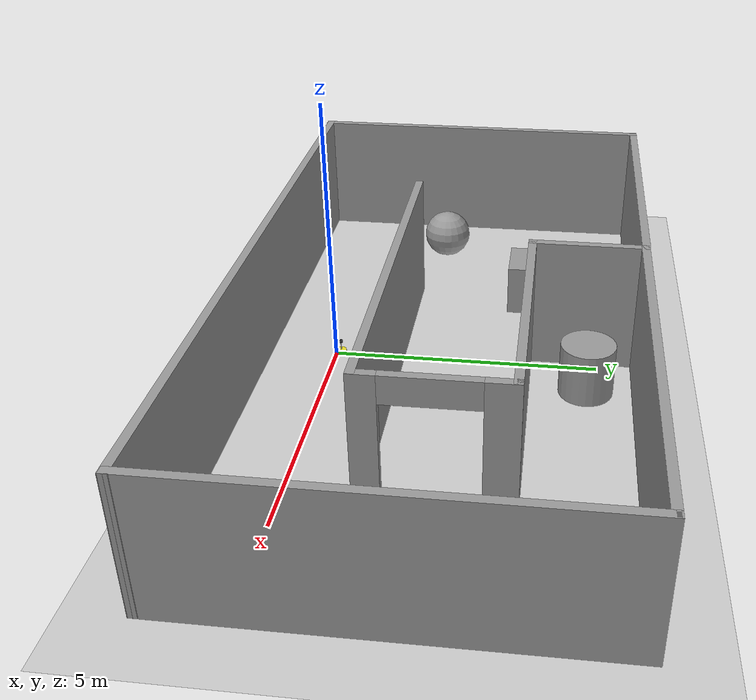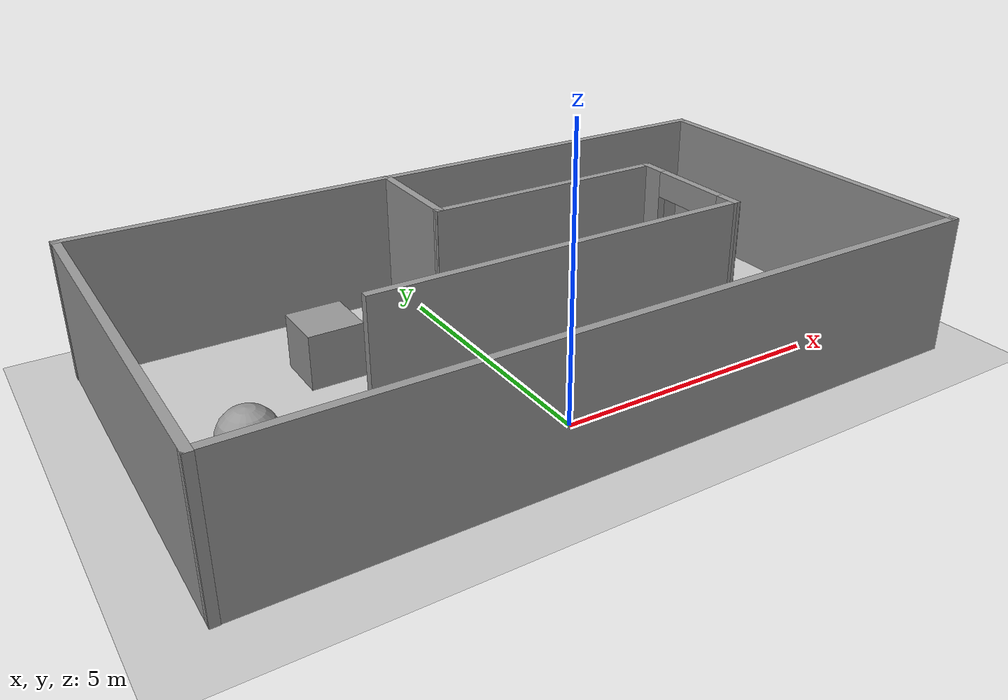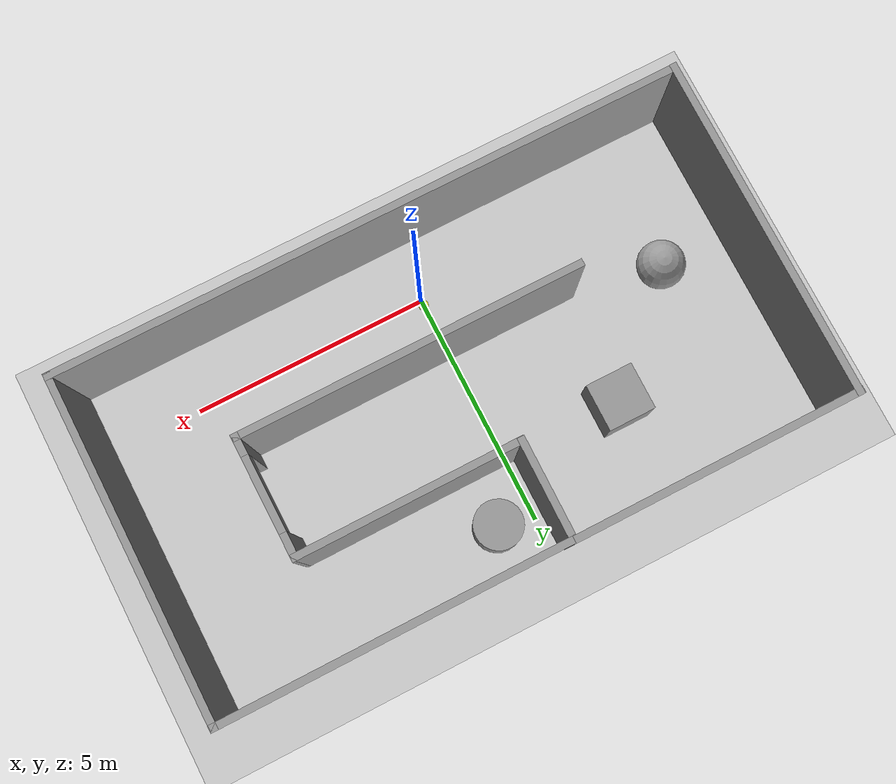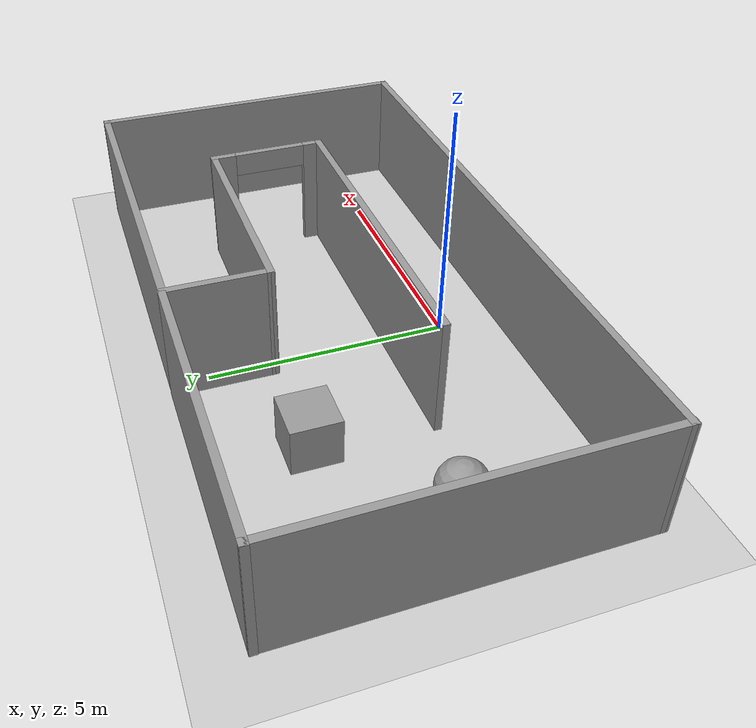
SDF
<sdf version="1.7">
 <world name="default">
  <light name="sun" type="directional">
   <pose>0 0 10 0 -0 0</pose>
   <diffuse>0.8 0.8 0.8 1</diffuse>
   <specular>0.2 0.2 0.2 1</specular>
   <attenuation>
    <range>1000</range>
    <constant>0.9</constant>
    <linear>0.01</linear>
    <quadratic>0.001</quadratic>
   </attenuation>
   <direction>-0.5 0.1 -0.9</direction>
   <spot><inner_angle>0</inner_angle><outer_angle>0</outer_angle><falloff>0</falloff></spot>
  </light>
  <model name="ground_plane">
   <static>1</static>
   <link name="link">
    <collision name="collision">
     <geometry><plane><normal>0 0 1</normal><size>100 100</size></plane></geometry>
     <surface>
      <contact><collide_bitmask>65535</collide_bitmask></contact>
      <friction><ode><mu>100</mu><mu2>50</mu2></ode></friction>
     </surface>
    </collision>
    <visual name="visual">
     <cast_shadows>0</cast_shadows>
     <geometry><plane><normal>0 0 1</normal><size>100 100</size></plane></geometry>
     <material>
      <script><uri>file://media/materials/scripts/gazebo.material</uri><name>Gazebo/Grey</name></script>
     </material>
    </visual>
   </link>
  </model>
  <gravity>0 0 -9.8</gravity>
  <magnetic_field>6e-06 2.3e-05 -4.2e-05</magnetic_field>
  <atmosphere type="adiabatic"/>
  <physics type="ode">
   <max_step_size>0.001</max_step_size>
   <real_time_factor>1</real_time_factor>
   <real_time_update_rate>1000</real_time_update_rate>
  </physics>
  <scene><ambient>0.4 0.4 0.4 1</ambient><background>0.7 0.7 0.7 1</background><shadows>1</shadows></scene>
  <spherical_coordinates>
   <surface_model>EARTH_WGS84</surface_model>
   <latitude_deg>0</latitude_deg>
   <longitude_deg>0</longitude_deg>
   <elevation>0</elevation>
   <heading_deg>0</heading_deg>
  </spherical_coordinates>
  <model name="mycar">
   <link name="base_footprint">
    <inertial>
     <pose>0.00127 0 0.093611 0 -0 0</pose>
     <mass>0.63</mass>
     <inertia>
      <ixx>0.00557395</ixx>
      <ixy>0</ixy>
      <ixz>-1.11111e-05</ixz>
      <iyy>0.00563694</iyy>
      <iyz>0</iyz>
      <izz>0.00261003</izz>
     </inertia>
    </inertial>
    <collision name="base_footprint_fixed_joint_lump__base_link_collision">
     <pose>0 0 0.055 0 -0 0</pose>
     <geometry><cylinder><length>0.08</length><radius>0.1</radius></cylinder></geometry>
    </collision>
    <collision name="base_footprint_fixed_joint_lump__camera_collision_1">
     <pose>0.08 0 0.1075 0 -0 0</pose>
     <geometry><box><size>0.01 0.025 0.025</size></box></geometry>
    </collision>
    <collision name="base_footprint_fixed_joint_lump__support_collision_2">
     <pose>0 0 0.17 0 -0 0</pose>
     <geometry><cylinder><length>0.15</length><radius>0.01</radius></cylinder></geometry>
    </collision>
    <collision name="base_footprint_fixed_joint_lump__laser_collision_3">
     <pose>0 0 0.27 0 -0 0</pose>
     <geometry><cylinder><length>0.05</length><radius>0.03</radius></cylinder></geometry>
    </collision>
    <visual name="base_footprint_visual"><geometry><sphere><radius>0.001</radius></sphere></geometry></visual>
    <visual name="base_footprint_fixed_joint_lump__base_link_visual_1">
     <pose>0 0 0.055 0 -0 0</pose>
     <geometry><cylinder><length>0.08</length><radius>0.1</radius></cylinder></geometry>
     <material>
      <script><name>Gazebo/Yellow</name><uri>file://media/materials/scripts/gazebo.material</uri></script>
     </material>
    </visual>
    <visual name="base_footprint_fixed_joint_lump__camera_visual_2">
     <pose>0.08 0 0.1075 0 -0 0</pose>
     <geometry><box><size>0.01 0.025 0.025</size></box></geometry>
     <material>
      <script><name>Gazebo/Blue</name><uri>file://media/materials/scripts/gazebo.material</uri></script>
     </material>
    </visual>
    <visual name="base_footprint_fixed_joint_lump__support_visual_3">
     <pose>0 0 0.17 0 -0 0</pose>
     <geometry><cylinder><length>0.15</length><radius>0.01</radius></cylinder></geometry>
     <material>
      <script><name>Gazebo/White</name><uri>file://media/materials/scripts/gazebo.material</uri></script>
     </material>
    </visual>
    <visual name="base_footprint_fixed_joint_lump__laser_visual_4">
     <pose>0 0 0.27 0 -0 0</pose>
     <geometry><cylinder><length>0.05</length><radius>0.03</radius></cylinder></geometry>
     <material>
      <script><name>Gazebo/Black</name><uri>file://media/materials/scripts/gazebo.material</uri></script>
     </material>
    </visual>
    <sensor name="rplidar" type="ray">
     <visualize>1</visualize>
     <update_rate>5.5</update_rate>
     <ray>
      <scan>
       <horizontal>
        <samples>360</samples>
        <resolution>1</resolution>
        <min_angle>-3</min_angle>
        <max_angle>3</max_angle>
       </horizontal>
       <vertical><samples>1</samples><min_angle>0</min_angle><max_angle>0</max_angle></vertical>
      </scan>
      <range><min>0.1</min><max>30</max><resolution>0.01</resolution></range>
      <noise><type>gaussian</type><mean>0</mean><stddev>0.01</stddev></noise>
     </ray>
     <plugin name="gazebo_rplidar" filename="libgazebo_ros_laser.so">
      <topicName>/scan</topicName>
      <frameName>laser</frameName>
      <robotNamespace>/</robotNamespace>
     </plugin>
     <pose>0 0 0.27 0 -0 0</pose>
    </sensor>
   </link>
   <joint name="back_wheel2base_link" type="revolute">
    <pose relative_to="base_footprint">-0.0925 0 0.0075 0 -0 0</pose>
    <parent>base_footprint</parent>
    <child>back_wheel</child>
    <axis>
     <xyz>1 1 1</xyz>
     <limit><lower>-1e+16</lower><upper>1e+16</upper></limit>
     <dynamics><spring_reference>0</spring_reference><spring_stiffness>0</spring_stiffness></dynamics>
    </axis>
   </joint>
   <link name="back_wheel">
    <pose relative_to="back_wheel2base_link">0 0 0 0 -0 0</pose>
    <inertial>
     <mass>0.03</mass>
     <inertia>
      <ixx>6.75e-07</ixx>
      <ixy>0</ixy>
      <ixz>0</ixz>
      <iyy>6.75e-07</iyy>
      <iyz>0</iyz>
      <izz>6.75e-07</izz>
     </inertia>
    </inertial>
    <collision name="back_wheel_collision">
     <geometry><sphere><radius>0.0075</radius></sphere></geometry>
    </collision>
    <visual name="back_wheel_visual">
     <geometry><sphere><radius>0.0075</radius></sphere></geometry>
     <material>
      <script><name>Gazebo/Red</name><uri>file://media/materials/scripts/gazebo.material</uri></script>
     </material>
    </visual>
   </link>
   <joint name="front_wheel2base_link" type="revolute">
    <pose relative_to="base_footprint">0.0925 0 0.0075 0 -0 0</pose>
    <parent>base_footprint</parent>
    <child>front_wheel</child>
    <axis>
     <xyz>1 1 1</xyz>
     <limit><lower>-1e+16</lower><upper>1e+16</upper></limit>
     <dynamics><spring_reference>0</spring_reference><spring_stiffness>0</spring_stiffness></dynamics>
    </axis>
   </joint>
   <link name="front_wheel">
    <pose relative_to="front_wheel2base_link">0 0 0 0 -0 0</pose>
    <inertial>
     <mass>0.03</mass>
     <inertia>
      <ixx>6.75e-07</ixx>
      <ixy>0</ixy>
      <ixz>0</ixz>
      <iyy>6.75e-07</iyy>
      <iyz>0</iyz>
      <izz>6.75e-07</izz>
     </inertia>
    </inertial>
    <collision name="front_wheel_collision">
     <geometry><sphere><radius>0.0075</radius></sphere></geometry>
    </collision>
    <visual name="front_wheel_visual">
     <geometry><sphere><radius>0.0075</radius></sphere></geometry>
     <material>
      <script><name>Gazebo/Red</name><uri>file://media/materials/scripts/gazebo.material</uri></script>
     </material>
    </visual>
   </link>
   <joint name="left_wheel2base_link" type="revolute">
    <pose relative_to="base_footprint">0 0.1 0.0325 0 -0 0</pose>
    <parent>base_footprint</parent>
    <child>left_wheel</child>
    <axis>
     <xyz>0 1 0</xyz>
     <limit><lower>-1e+16</lower><upper>1e+16</upper></limit>
     <dynamics><spring_reference>0</spring_reference><spring_stiffness>0</spring_stiffness></dynamics>
    </axis>
   </joint>
   <link name="left_wheel">
    <pose relative_to="left_wheel2base_link">0 0 0 0 -0 0</pose>
    <inertial>
     <mass>0.05</mass>
     <inertia>
      <ixx>1.41406e-05</ixx>
      <ixy>0</ixy>
      <ixz>0</ixz>
      <iyy>1.41406e-05</iyy>
      <iyz>0</iyz>
      <izz>2.64063e-05</izz>
     </inertia>
    </inertial>
    <collision name="left_wheel_collision">
     <pose>0 0 0 1.5708 -0 0</pose>
     <geometry><cylinder><length>0.015</length><radius>0.0325</radius></cylinder></geometry>
    </collision>
    <visual name="left_wheel_visual">
     <pose>0 0 0 1.5708 -0 0</pose>
     <geometry><cylinder><length>0.015</length><radius>0.0325</radius></cylinder></geometry>
     <material>
      <script><name>Gazebo/Red</name><uri>file://media/materials/scripts/gazebo.material</uri></script>
     </material>
    </visual>
   </link>
   <joint name="right_wheel2base_link" type="revolute">
    <pose relative_to="base_footprint">0 -0.1 0.0325 0 -0 0</pose>
    <parent>base_footprint</parent>
    <child>right_wheel</child>
    <axis>
     <xyz>0 1 0</xyz>
     <limit><lower>-1e+16</lower><upper>1e+16</upper></limit>
     <dynamics><spring_reference>0</spring_reference><spring_stiffness>0</spring_stiffness></dynamics>
    </axis>
   </joint>
   <link name="right_wheel">
    <pose relative_to="right_wheel2base_link">0 0 0 0 -0 0</pose>
    <inertial>
     <mass>0.05</mass>
     <inertia>
      <ixx>1.41406e-05</ixx>
      <ixy>0</ixy>
      <ixz>0</ixz>
      <iyy>1.41406e-05</iyy>
      <iyz>0</iyz>
      <izz>2.64063e-05</izz>
     </inertia>
    </inertial>
    <collision name="right_wheel_collision">
     <pose>0 0 0 1.5708 -0 0</pose>
     <geometry><cylinder><length>0.015</length><radius>0.0325</radius></cylinder></geometry>
    </collision>
    <visual name="right_wheel_visual">
     <pose>0 0 0 1.5708 -0 0</pose>
     <geometry><cylinder><length>0.015</length><radius>0.0325</radius></cylinder></geometry>
     <material>
      <script><name>Gazebo/Red</name><uri>file://media/materials/scripts/gazebo.material</uri></script>
     </material>
    </visual>
   </link>
   <plugin name="differential_drive_controller" filename="libgazebo_ros_diff_drive.so">
    <rosDebugLevel>Debug</rosDebugLevel>
    <publishWheelTF>1</publishWheelTF>
    <robotNamespace>/</robotNamespace>
    <publishTf>1</publishTf>
    <publishWheelJointState>1</publishWheelJointState>
    <alwaysOn>1</alwaysOn>
    <updateRate>100.0</updateRate>
    <legacyMode>1</legacyMode>
    <leftJoint>left_wheel2base_link</leftJoint>
    <rightJoint>right_wheel2base_link</rightJoint>
    <wheelSeparation>0.2</wheelSeparation>
    <wheelDiameter>0.065</wheelDiameter>
    <broadcastTF>1</broadcastTF>
    <wheelTorque>30</wheelTorque>
    <wheelAcceleration>1.8</wheelAcceleration>
    <commandTopic>cmd_vel</commandTopic>
    <odometryFrame>odom</odometryFrame>
    <odometryTopic>odom</odometryTopic>
    <robotBaseFrame>base_footprint</robotBaseFrame>
   </plugin>
   <frame name="camera2base_link" attached_to="base_link"><pose>0.08 0 0.0525 0 -0 0</pose></frame>
   <frame name="camera" attached_to="camera2base_link"/>
   <frame name="laser2support" attached_to="support"><pose>0 0 0.1 0 -0 0</pose></frame>
   <frame name="laser" attached_to="laser2support"/>
   <frame name="support2base_link" attached_to="base_link"><pose>0 0 0.115 0 -0 0</pose></frame>
   <frame name="support" attached_to="support2base_link"/>
   <frame name="base_link2base_footprint" attached_to="base_footprint"><pose>0 0 0.055 0 -0 0</pose></frame>
   <frame name="base_link" attached_to="base_link2base_footprint"/>
   <pose>-0.006682 0.097629 0 0 0 -0.049152</pose>
  </model>
  <model name="zoulang">
   <link name="Wall_1">
    <pose>-1e-06 -3.52 0 0 -0 3.14083</pose>
    <visual name="Wall_1_Visual">
     <pose>0 0 1.25 0 -0 0</pose>
     <geometry><box><size>13.25 0.15 2.5</size></box></geometry>
     <material>
      <script><uri>file://media/materials/scripts/gazebo.material</uri><name>Gazebo/Grey</name></script>
      <ambient>1 1 1 1</ambient>
      <shader type="pixel"/>
     </material>
     <meta><layer>0</layer></meta>
    </visual>
    <collision name="Wall_1_Collision">
     <pose>0 0 1.25 0 -0 0</pose>
     <geometry><box><size>13.25 0.15 2.5</size></box></geometry>
     <surface>
      <friction>
       <ode><mu>1</mu><mu2>1</mu2><fdir1>0 0 0</fdir1><slip1>0</slip1><slip2>0</slip2></ode>
       <torsional>
        <coefficient>1</coefficient>
        <patch_radius>0</patch_radius>
        <surface_radius>0</surface_radius>
        <use_patch_radius>1</use_patch_radius>
        <ode><slip>0</slip></ode>
       </torsional>
      </friction>
      <bounce><restitution_coefficient>0</restitution_coefficient><threshold>1e+06</threshold></bounce>
      <contact>
       <collide_without_contact>0</collide_without_contact>
       <collide_without_contact_bitmask>1</collide_without_contact_bitmask>
       <collide_bitmask>1</collide_bitmask>
       <ode>
        <soft_cfm>0</soft_cfm>
        <soft_erp>0.2</soft_erp>
        <kp>1e+13</kp>
        <kd>1</kd>
        <max_vel>0.01</max_vel>
        <min_depth>0</min_depth>
       </ode>
       <bullet>
        <split_impulse>1</split_impulse>
        <split_impulse_penetration_threshold>-0.01</split_impulse_penetration_threshold>
        <soft_cfm>0</soft_cfm>
        <soft_erp>0.2</soft_erp>
        <kp>1e+13</kp>
        <kd>1</kd>
       </bullet>
      </contact>
     </surface>
    </collision>
   </link>
   <link name="Wall_11">
    <pose>2.955 3.515 0 0 -0 3.14159</pose>
    <visual name="Wall_11_Visual">
     <pose>0 0 1.25 0 -0 0</pose>
     <geometry><box><size>7.3 0.15 2.5</size></box></geometry>
     <material>
      <script><uri>file://media/materials/scripts/gazebo.material</uri><name>Gazebo/Grey</name></script>
      <ambient>1 1 1 1</ambient>
      <shader type="pixel"/>
     </material>
     <meta><layer>0</layer></meta>
    </visual>
    <collision name="Wall_11_Collision">
     <pose>0 0 1.25 0 -0 0</pose>
     <geometry><box><size>7.3 0.15 2.5</size></box></geometry>
     <surface>
      <friction>
       <ode><mu>1</mu><mu2>1</mu2><fdir1>0 0 0</fdir1><slip1>0</slip1><slip2>0</slip2></ode>
       <torsional>
        <coefficient>1</coefficient>
        <patch_radius>0</patch_radius>
        <surface_radius>0</surface_radius>
        <use_patch_radius>1</use_patch_radius>
        <ode><slip>0</slip></ode>
       </torsional>
      </friction>
      <bounce><restitution_coefficient>0</restitution_coefficient><threshold>1e+06</threshold></bounce>
      <contact>
       <collide_without_contact>0</collide_without_contact>
       <collide_without_contact_bitmask>1</collide_without_contact_bitmask>
       <collide_bitmask>1</collide_bitmask>
       <ode>
        <soft_cfm>0</soft_cfm>
        <soft_erp>0.2</soft_erp>
        <kp>1e+13</kp>
        <kd>1</kd>
        <max_vel>0.01</max_vel>
        <min_depth>0</min_depth>
       </ode>
       <bullet>
        <split_impulse>1</split_impulse>
        <split_impulse_penetration_threshold>-0.01</split_impulse_penetration_threshold>
        <soft_cfm>0</soft_cfm>
        <soft_erp>0.2</soft_erp>
        <kp>1e+13</kp>
        <kd>1</kd>
       </bullet>
      </contact>
     </surface>
    </collision>
   </link>
   <link name="Wall_12">
    <pose>-0.625001 2.51 0 0 0 -1.57577</pose>
    <visual name="Wall_12_Visual">
     <pose>0 0 1.25 0 -0 0</pose>
     <geometry><box><size>2.16003 0.15 2.5</size></box></geometry>
     <material>
      <script><uri>file://media/materials/scripts/gazebo.material</uri><name>Gazebo/Grey</name></script>
      <ambient>1 1 1 1</ambient>
      <shader type="pixel"/>
     </material>
     <meta><layer>0</layer></meta>
    </visual>
    <collision name="Wall_12_Collision">
     <pose>0 0 1.25 0 -0 0</pose>
     <geometry><box><size>2.16003 0.15 2.5</size></box></geometry>
     <surface>
      <friction>
       <ode><mu>1</mu><mu2>1</mu2><fdir1>0 0 0</fdir1><slip1>0</slip1><slip2>0</slip2></ode>
       <torsional>
        <coefficient>1</coefficient>
        <patch_radius>0</patch_radius>
        <surface_radius>0</surface_radius>
        <use_patch_radius>1</use_patch_radius>
        <ode><slip>0</slip></ode>
       </torsional>
      </friction>
      <bounce><restitution_coefficient>0</restitution_coefficient><threshold>1e+06</threshold></bounce>
      <contact>
       <collide_without_contact>0</collide_without_contact>
       <collide_without_contact_bitmask>1</collide_without_contact_bitmask>
       <collide_bitmask>1</collide_bitmask>
       <ode>
        <soft_cfm>0</soft_cfm>
        <soft_erp>0.2</soft_erp>
        <kp>1e+13</kp>
        <kd>1</kd>
        <max_vel>0.01</max_vel>
        <min_depth>0</min_depth>
       </ode>
       <bullet>
        <split_impulse>1</split_impulse>
        <split_impulse_penetration_threshold>-0.01</split_impulse_penetration_threshold>
        <soft_cfm>0</soft_cfm>
        <soft_erp>0.2</soft_erp>
        <kp>1e+13</kp>
        <kd>1</kd>
       </bullet>
      </contact>
     </surface>
    </collision>
   </link>
   <link name="Wall_13">
    <pose>1.665 1.5 0 0 -0 0.002179</pose>
    <visual name="Wall_13_Visual">
     <pose>0 0 1.25 0 -0 0</pose>
     <geometry><box><size>4.74001 0.15 2.5</size></box></geometry>
     <material>
      <script><uri>file://media/materials/scripts/gazebo.material</uri><name>Gazebo/Grey</name></script>
      <ambient>1 1 1 1</ambient>
      <shader type="pixel"/>
     </material>
     <meta><layer>0</layer></meta>
    </visual>
    <collision name="Wall_13_Collision">
     <pose>0 0 1.25 0 -0 0</pose>
     <geometry><box><size>4.74001 0.15 2.5</size></box></geometry>
     <surface>
      <friction>
       <ode><mu>1</mu><mu2>1</mu2><fdir1>0 0 0</fdir1><slip1>0</slip1><slip2>0</slip2></ode>
       <torsional>
        <coefficient>1</coefficient>
        <patch_radius>0</patch_radius>
        <surface_radius>0</surface_radius>
        <use_patch_radius>1</use_patch_radius>
        <ode><slip>0</slip></ode>
       </torsional>
      </friction>
      <bounce><restitution_coefficient>0</restitution_coefficient><threshold>1e+06</threshold></bounce>
      <contact>
       <collide_without_contact>0</collide_without_contact>
       <collide_without_contact_bitmask>1</collide_without_contact_bitmask>
       <collide_bitmask>1</collide_bitmask>
       <ode>
        <soft_cfm>0</soft_cfm>
        <soft_erp>0.2</soft_erp>
        <kp>1e+13</kp>
        <kd>1</kd>
        <max_vel>0.01</max_vel>
        <min_depth>0</min_depth>
       </ode>
       <bullet>
        <split_impulse>1</split_impulse>
        <split_impulse_penetration_threshold>-0.01</split_impulse_penetration_threshold>
        <soft_cfm>0</soft_cfm>
        <soft_erp>0.2</soft_erp>
        <kp>1e+13</kp>
        <kd>1</kd>
       </bullet>
      </contact>
     </surface>
    </collision>
   </link>
   <link name="Wall_14">
    <pose>3.975 0.285 0 0 0 -1.5667</pose>
    <visual name="Wall_14_Visual_0">
     <pose>-1.01502 0 1.25 0 -0 0</pose>
     <geometry><box><size>0.559972 0.15 2.5</size></box></geometry>
     <material>
      <script><uri>file://media/materials/scripts/gazebo.material</uri><name>Gazebo/Grey</name></script>
      <ambient>1 1 1 1</ambient>
      <shader type="pixel"/>
     </material>
     <meta><layer>0</layer></meta>
    </visual>
    <visual name="Wall_14_Visual_1">
     <pose>1.0648 0 1.25 0 -0 0</pose>
     <geometry><box><size>0.460423 0.15 2.5</size></box></geometry>
     <material>
      <script><uri>file://media/materials/scripts/gazebo.material</uri><name>Gazebo/Grey</name></script>
      <ambient>1 1 1 1</ambient>
      <shader type="pixel"/>
     </material>
     <meta><layer>0</layer></meta>
    </visual>
    <visual name="Wall_14_Visual_2">
     <pose>0.049774 0 2.25 0 -0 0</pose>
     <geometry><box><size>1.56963 0.15 0.5</size></box></geometry>
     <material>
      <script><uri>file://media/materials/scripts/gazebo.material</uri><name>Gazebo/Grey</name></script>
      <ambient>1 1 1 1</ambient>
      <shader type="pixel"/>
     </material>
     <meta><layer>0</layer></meta>
    </visual>
    <collision name="Wall_14_Collision_0">
     <pose>-1.01502 0 1.25 0 -0 0</pose>
     <geometry><box><size>0.559972 0.15 2.5</size></box></geometry>
     <surface>
      <friction>
       <ode><mu>1</mu><mu2>1</mu2><fdir1>0 0 0</fdir1><slip1>0</slip1><slip2>0</slip2></ode>
       <torsional>
        <coefficient>1</coefficient>
        <patch_radius>0</patch_radius>
        <surface_radius>0</surface_radius>
        <use_patch_radius>1</use_patch_radius>
        <ode><slip>0</slip></ode>
       </torsional>
      </friction>
      <bounce><restitution_coefficient>0</restitution_coefficient><threshold>1e+06</threshold></bounce>
      <contact>
       <collide_without_contact>0</collide_without_contact>
       <collide_without_contact_bitmask>1</collide_without_contact_bitmask>
       <collide_bitmask>1</collide_bitmask>
       <ode>
        <soft_cfm>0</soft_cfm>
        <soft_erp>0.2</soft_erp>
        <kp>1e+13</kp>
        <kd>1</kd>
        <max_vel>0.01</max_vel>
        <min_depth>0</min_depth>
       </ode>
       <bullet>
        <split_impulse>1</split_impulse>
        <split_impulse_penetration_threshold>-0.01</split_impulse_penetration_threshold>
        <soft_cfm>0</soft_cfm>
        <soft_erp>0.2</soft_erp>
        <kp>1e+13</kp>
        <kd>1</kd>
       </bullet>
      </contact>
     </surface>
    </collision>
    <collision name="Wall_14_Collision_1">
     <pose>1.0648 0 1.25 0 -0 0</pose>
     <geometry><box><size>0.460423 0.15 2.5</size></box></geometry>
     <surface>
      <friction>
       <ode><mu>1</mu><mu2>1</mu2><fdir1>0 0 0</fdir1><slip1>0</slip1><slip2>0</slip2></ode>
       <torsional>
        <coefficient>1</coefficient>
        <patch_radius>0</patch_radius>
        <surface_radius>0</surface_radius>
        <use_patch_radius>1</use_patch_radius>
        <ode><slip>0</slip></ode>
       </torsional>
      </friction>
      <bounce><restitution_coefficient>0</restitution_coefficient><threshold>1e+06</threshold></bounce>
      <contact>
       <collide_without_contact>0</collide_without_contact>
       <collide_without_contact_bitmask>1</collide_without_contact_bitmask>
       <collide_bitmask>1</collide_bitmask>
       <ode>
        <soft_cfm>0</soft_cfm>
        <soft_erp>0.2</soft_erp>
        <kp>1e+13</kp>
        <kd>1</kd>
        <max_vel>0.01</max_vel>
        <min_depth>0</min_depth>
       </ode>
       <bullet>
        <split_impulse>1</split_impulse>
        <split_impulse_penetration_threshold>-0.01</split_impulse_penetration_threshold>
        <soft_cfm>0</soft_cfm>
        <soft_erp>0.2</soft_erp>
        <kp>1e+13</kp>
        <kd>1</kd>
       </bullet>
      </contact>
     </surface>
    </collision>
    <collision name="Wall_14_Collision_2">
     <pose>0.049774 0 2.25 0 -0 0</pose>
     <geometry><box><size>1.56963 0.15 0.5</size></box></geometry>
     <surface>
      <friction>
       <ode><mu>1</mu><mu2>1</mu2><fdir1>0 0 0</fdir1><slip1>0</slip1><slip2>0</slip2></ode>
       <torsional>
        <coefficient>1</coefficient>
        <patch_radius>0</patch_radius>
        <surface_radius>0</surface_radius>
        <use_patch_radius>1</use_patch_radius>
        <ode><slip>0</slip></ode>
       </torsional>
      </friction>
      <bounce><restitution_coefficient>0</restitution_coefficient><threshold>1e+06</threshold></bounce>
      <contact>
       <collide_without_contact>0</collide_without_contact>
       <collide_without_contact_bitmask>1</collide_without_contact_bitmask>
       <collide_bitmask>1</collide_bitmask>
       <ode>
        <soft_cfm>0</soft_cfm>
        <soft_erp>0.2</soft_erp>
        <kp>1e+13</kp>
        <kd>1</kd>
        <max_vel>0.01</max_vel>
        <min_depth>0</min_depth>
       </ode>
       <bullet>
        <split_impulse>1</split_impulse>
        <split_impulse_penetration_threshold>-0.01</split_impulse_penetration_threshold>
        <soft_cfm>0</soft_cfm>
        <soft_erp>0.2</soft_erp>
        <kp>1e+13</kp>
        <kd>1</kd>
       </bullet>
      </contact>
     </surface>
    </collision>
   </link>
   <link name="Wall_17">
    <pose>0.424999 -0.935 0 0 -0 3.14159</pose>
    <visual name="Wall_17_Visual">
     <pose>0 0 1.25 0 -0 0</pose>
     <geometry><box><size>7.24 0.15 2.5</size></box></geometry>
     <material>
      <script><uri>file://media/materials/scripts/gazebo.material</uri><name>Gazebo/Grey</name></script>
      <ambient>1 1 1 1</ambient>
      <shader type="pixel"/>
     </material>
     <meta><layer>0</layer></meta>
    </visual>
    <collision name="Wall_17_Collision">
     <pose>0 0 1.25 0 -0 0</pose>
     <geometry><box><size>7.24 0.15 2.5</size></box></geometry>
     <surface>
      <friction>
       <ode><mu>1</mu><mu2>1</mu2><fdir1>0 0 0</fdir1><slip1>0</slip1><slip2>0</slip2></ode>
       <torsional>
        <coefficient>1</coefficient>
        <patch_radius>0</patch_radius>
        <surface_radius>0</surface_radius>
        <use_patch_radius>1</use_patch_radius>
        <ode><slip>0</slip></ode>
       </torsional>
      </friction>
      <bounce><restitution_coefficient>0</restitution_coefficient><threshold>1e+06</threshold></bounce>
      <contact>
       <collide_without_contact>0</collide_without_contact>
       <collide_without_contact_bitmask>1</collide_without_contact_bitmask>
       <collide_bitmask>1</collide_bitmask>
       <ode>
        <soft_cfm>0</soft_cfm>
        <soft_erp>0.2</soft_erp>
        <kp>1e+13</kp>
        <kd>1</kd>
        <max_vel>0.01</max_vel>
        <min_depth>0</min_depth>
       </ode>
       <bullet>
        <split_impulse>1</split_impulse>
        <split_impulse_penetration_threshold>-0.01</split_impulse_penetration_threshold>
        <soft_cfm>0</soft_cfm>
        <soft_erp>0.2</soft_erp>
        <kp>1e+13</kp>
        <kd>1</kd>
       </bullet>
      </contact>
     </surface>
    </collision>
   </link>
   <link name="Wall_4">
    <pose>6.55 -3.515 0 0 -0 0</pose>
    <visual name="Wall_4_Visual">
     <pose>0 0 1.25 0 -0 0</pose>
     <geometry><box><size>0.15 0.15 2.5</size></box></geometry>
     <material>
      <script><uri>file://media/materials/scripts/gazebo.material</uri><name>Gazebo/Grey</name></script>
      <ambient>1 1 1 1</ambient>
      <shader type="pixel"/>
     </material>
     <meta><layer>0</layer></meta>
    </visual>
    <collision name="Wall_4_Collision">
     <pose>0 0 1.25 0 -0 0</pose>
     <geometry><box><size>0.15 0.15 2.5</size></box></geometry>
     <surface>
      <friction>
       <ode><mu>1</mu><mu2>1</mu2><fdir1>0 0 0</fdir1><slip1>0</slip1><slip2>0</slip2></ode>
       <torsional>
        <coefficient>1</coefficient>
        <patch_radius>0</patch_radius>
        <surface_radius>0</surface_radius>
        <use_patch_radius>1</use_patch_radius>
        <ode><slip>0</slip></ode>
       </torsional>
      </friction>
      <bounce><restitution_coefficient>0</restitution_coefficient><threshold>1e+06</threshold></bounce>
      <contact>
       <collide_without_contact>0</collide_without_contact>
       <collide_without_contact_bitmask>1</collide_without_contact_bitmask>
       <collide_bitmask>1</collide_bitmask>
       <ode>
        <soft_cfm>0</soft_cfm>
        <soft_erp>0.2</soft_erp>
        <kp>1e+13</kp>
        <kd>1</kd>
        <max_vel>0.01</max_vel>
        <min_depth>0</min_depth>
       </ode>
       <bullet>
        <split_impulse>1</split_impulse>
        <split_impulse_penetration_threshold>-0.01</split_impulse_penetration_threshold>
        <soft_cfm>0</soft_cfm>
        <soft_erp>0.2</soft_erp>
        <kp>1e+13</kp>
        <kd>1</kd>
       </bullet>
      </contact>
     </surface>
    </collision>
   </link>
   <link name="Wall_40">
    <pose>-6.545 0 0 0 -0 1.56938</pose>
    <visual name="Wall_40_Visual">
     <pose>0 0 1.25 0 -0 0</pose>
     <geometry><box><size>7.20001 0.15 2.5</size></box></geometry>
     <material>
      <script><uri>file://media/materials/scripts/gazebo.material</uri><name>Gazebo/Grey</name></script>
      <ambient>1 1 1 1</ambient>
      <shader type="pixel"/>
     </material>
     <meta><layer>0</layer></meta>
    </visual>
    <collision name="Wall_40_Collision">
     <pose>0 0 1.25 0 -0 0</pose>
     <geometry><box><size>7.20001 0.15 2.5</size></box></geometry>
     <surface>
      <friction>
       <ode><mu>1</mu><mu2>1</mu2><fdir1>0 0 0</fdir1><slip1>0</slip1><slip2>0</slip2></ode>
       <torsional>
        <coefficient>1</coefficient>
        <patch_radius>0</patch_radius>
        <surface_radius>0</surface_radius>
        <use_patch_radius>1</use_patch_radius>
        <ode><slip>0</slip></ode>
       </torsional>
      </friction>
      <bounce><restitution_coefficient>0</restitution_coefficient><threshold>1e+06</threshold></bounce>
      <contact>
       <collide_without_contact>0</collide_without_contact>
       <collide_without_contact_bitmask>1</collide_without_contact_bitmask>
       <collide_bitmask>1</collide_bitmask>
       <ode>
        <soft_cfm>0</soft_cfm>
        <soft_erp>0.2</soft_erp>
        <kp>1e+13</kp>
        <kd>1</kd>
        <max_vel>0.01</max_vel>
        <min_depth>0</min_depth>
       </ode>
       <bullet>
        <split_impulse>1</split_impulse>
        <split_impulse_penetration_threshold>-0.01</split_impulse_penetration_threshold>
        <soft_cfm>0</soft_cfm>
        <soft_erp>0.2</soft_erp>
        <kp>1e+13</kp>
        <kd>1</kd>
       </bullet>
      </contact>
     </surface>
    </collision>
   </link>
   <link name="Wall_45">
    <pose>-3.625 3.525 0 0 -0 0</pose>
    <visual name="Wall_45_Visual">
     <pose>0 0 1.25 0 -0 0</pose>
     <geometry><box><size>6 0.15 2.5</size></box></geometry>
     <material>
      <script><uri>file://media/materials/scripts/gazebo.material</uri><name>Gazebo/Grey</name></script>
      <ambient>1 1 1 1</ambient>
      <shader type="pixel"/>
     </material>
     <meta><layer>0</layer></meta>
    </visual>
    <collision name="Wall_45_Collision">
     <pose>0 0 1.25 0 -0 0</pose>
     <geometry><box><size>6 0.15 2.5</size></box></geometry>
     <surface>
      <friction>
       <ode><mu>1</mu><mu2>1</mu2><fdir1>0 0 0</fdir1><slip1>0</slip1><slip2>0</slip2></ode>
       <torsional>
        <coefficient>1</coefficient>
        <patch_radius>0</patch_radius>
        <surface_radius>0</surface_radius>
        <use_patch_radius>1</use_patch_radius>
        <ode><slip>0</slip></ode>
       </torsional>
      </friction>
      <bounce><restitution_coefficient>0</restitution_coefficient><threshold>1e+06</threshold></bounce>
      <contact>
       <collide_without_contact>0</collide_without_contact>
       <collide_without_contact_bitmask>1</collide_without_contact_bitmask>
       <collide_bitmask>1</collide_bitmask>
       <ode>
        <soft_cfm>0</soft_cfm>
        <soft_erp>0.2</soft_erp>
        <kp>1e+13</kp>
        <kd>1</kd>
        <max_vel>0.01</max_vel>
        <min_depth>0</min_depth>
       </ode>
       <bullet>
        <split_impulse>1</split_impulse>
        <split_impulse_penetration_threshold>-0.01</split_impulse_penetration_threshold>
        <soft_cfm>0</soft_cfm>
        <soft_erp>0.2</soft_erp>
        <kp>1e+13</kp>
        <kd>1</kd>
       </bullet>
      </contact>
     </surface>
    </collision>
   </link>
   <link name="Wall_5">
    <pose>6.55 -3.515 0 0 -0 0</pose>
    <visual name="Wall_5_Visual">
     <pose>0 0 1.25 0 -0 0</pose>
     <geometry><box><size>0.15 0.15 2.5</size></box></geometry>
     <material>
      <script><uri>file://media/materials/scripts/gazebo.material</uri><name>Gazebo/Grey</name></script>
      <ambient>1 1 1 1</ambient>
      <shader type="pixel"/>
     </material>
     <meta><layer>0</layer></meta>
    </visual>
    <collision name="Wall_5_Collision">
     <pose>0 0 1.25 0 -0 0</pose>
     <geometry><box><size>0.15 0.15 2.5</size></box></geometry>
     <surface>
      <friction>
       <ode><mu>1</mu><mu2>1</mu2><fdir1>0 0 0</fdir1><slip1>0</slip1><slip2>0</slip2></ode>
       <torsional>
        <coefficient>1</coefficient>
        <patch_radius>0</patch_radius>
        <surface_radius>0</surface_radius>
        <use_patch_radius>1</use_patch_radius>
        <ode><slip>0</slip></ode>
       </torsional>
      </friction>
      <bounce><restitution_coefficient>0</restitution_coefficient><threshold>1e+06</threshold></bounce>
      <contact>
       <collide_without_contact>0</collide_without_contact>
       <collide_without_contact_bitmask>1</collide_without_contact_bitmask>
       <collide_bitmask>1</collide_bitmask>
       <ode>
        <soft_cfm>0</soft_cfm>
        <soft_erp>0.2</soft_erp>
        <kp>1e+13</kp>
        <kd>1</kd>
        <max_vel>0.01</max_vel>
        <min_depth>0</min_depth>
       </ode>
       <bullet>
        <split_impulse>1</split_impulse>
        <split_impulse_penetration_threshold>-0.01</split_impulse_penetration_threshold>
        <soft_cfm>0</soft_cfm>
        <soft_erp>0.2</soft_erp>
        <kp>1e+13</kp>
        <kd>1</kd>
       </bullet>
      </contact>
     </surface>
    </collision>
   </link>
   <link name="Wall_7">
    <pose>6.545 0 0 0 -0 1.57222</pose>
    <visual name="Wall_7_Visual">
     <pose>0 0 1.25 0 -0 0</pose>
     <geometry><box><size>7.18001 0.15 2.5</size></box></geometry>
     <material>
      <script><uri>file://media/materials/scripts/gazebo.material</uri><name>Gazebo/Grey</name></script>
      <ambient>1 1 1 1</ambient>
      <shader type="pixel"/>
     </material>
     <meta><layer>0</layer></meta>
    </visual>
    <collision name="Wall_7_Collision">
     <pose>0 0 1.25 0 -0 0</pose>
     <geometry><box><size>7.18001 0.15 2.5</size></box></geometry>
     <surface>
      <friction>
       <ode><mu>1</mu><mu2>1</mu2><fdir1>0 0 0</fdir1><slip1>0</slip1><slip2>0</slip2></ode>
       <torsional>
        <coefficient>1</coefficient>
        <patch_radius>0</patch_radius>
        <surface_radius>0</surface_radius>
        <use_patch_radius>1</use_patch_radius>
        <ode><slip>0</slip></ode>
       </torsional>
      </friction>
      <bounce><restitution_coefficient>0</restitution_coefficient><threshold>1e+06</threshold></bounce>
      <contact>
       <collide_without_contact>0</collide_without_contact>
       <collide_without_contact_bitmask>1</collide_without_contact_bitmask>
       <collide_bitmask>1</collide_bitmask>
       <ode>
        <soft_cfm>0</soft_cfm>
        <soft_erp>0.2</soft_erp>
        <kp>1e+13</kp>
        <kd>1</kd>
        <max_vel>0.01</max_vel>
        <min_depth>0</min_depth>
       </ode>
       <bullet>
        <split_impulse>1</split_impulse>
        <split_impulse_penetration_threshold>-0.01</split_impulse_penetration_threshold>
        <soft_cfm>0</soft_cfm>
        <soft_erp>0.2</soft_erp>
        <kp>1e+13</kp>
        <kd>1</kd>
       </bullet>
      </contact>
     </surface>
    </collision>
   </link>
   <link name="link_0">
    <inertial>
     <mass>1</mass>
     <inertia>
      <ixx>0.166667</ixx>
      <ixy>0</ixy>
      <ixz>0</ixz>
      <iyy>0.166667</iyy>
      <iyz>0</iyz>
      <izz>0.166667</izz>
     </inertia>
    </inertial>
    <pose>-2.89127 1.48706 0.5 0 -0 0</pose>
    <visual name="visual">
     <geometry><box><size>1 1 1</size></box></geometry>
     <material>
      <lighting>1</lighting>
      <script><uri>file://media/materials/scripts/gazebo.material</uri><name>Gazebo/Grey</name></script>
      <shader type="pixel"/>
     </material>
    </visual>
    <collision name="collision">
     <geometry><box><size>1 1 1</size></box></geometry>
     <surface>
      <friction>
       <ode><mu>1</mu><mu2>1</mu2><fdir1>0 0 0</fdir1><slip1>0</slip1><slip2>0</slip2></ode>
       <torsional>
        <coefficient>1</coefficient>
        <patch_radius>0</patch_radius>
        <surface_radius>0</surface_radius>
        <use_patch_radius>1</use_patch_radius>
        <ode><slip>0</slip></ode>
       </torsional>
      </friction>
      <bounce><restitution_coefficient>0</restitution_coefficient><threshold>1e+06</threshold></bounce>
      <contact>
       <collide_without_contact>0</collide_without_contact>
       <collide_without_contact_bitmask>1</collide_without_contact_bitmask>
       <collide_bitmask>1</collide_bitmask>
       <ode>
        <soft_cfm>0</soft_cfm>
        <soft_erp>0.2</soft_erp>
        <kp>1e+13</kp>
        <kd>1</kd>
        <max_vel>0.01</max_vel>
        <min_depth>0</min_depth>
       </ode>
       <bullet>
        <split_impulse>1</split_impulse>
        <split_impulse_penetration_threshold>-0.01</split_impulse_penetration_threshold>
        <soft_cfm>0</soft_cfm>
        <soft_erp>0.2</soft_erp>
        <kp>1e+13</kp>
        <kd>1</kd>
       </bullet>
      </contact>
     </surface>
    </collision>
   </link>
   <link name="link_1">
    <inertial>
     <mass>1</mass>
     <inertia><ixx>0.1</ixx><ixy>0</ixy><ixz>0</ixz><iyy>0.1</iyy><iyz>0</iyz><izz>0.1</izz></inertia>
    </inertial>
    <pose>-4.99875 -0.564107 0.5 0 -0 0</pose>
    <visual name="visual">
     <geometry><sphere><radius>0.5</radius></sphere></geometry>
     <material>
      <lighting>1</lighting>
      <script><uri>file://media/materials/scripts/gazebo.material</uri><name>Gazebo/Grey</name></script>
      <shader type="pixel"/>
     </material>
    </visual>
    <collision name="collision">
     <geometry><sphere><radius>0.5</radius></sphere></geometry>
     <surface>
      <friction>
       <ode><mu>1</mu><mu2>1</mu2><fdir1>0 0 0</fdir1><slip1>0</slip1><slip2>0</slip2></ode>
       <torsional>
        <coefficient>1</coefficient>
        <patch_radius>0</patch_radius>
        <surface_radius>0</surface_radius>
        <use_patch_radius>1</use_patch_radius>
        <ode><slip>0</slip></ode>
       </torsional>
      </friction>
      <bounce><restitution_coefficient>0</restitution_coefficient><threshold>1e+06</threshold></bounce>
      <contact>
       <collide_without_contact>0</collide_without_contact>
       <collide_without_contact_bitmask>1</collide_without_contact_bitmask>
       <collide_bitmask>1</collide_bitmask>
       <ode>
        <soft_cfm>0</soft_cfm>
        <soft_erp>0.2</soft_erp>
        <kp>1e+13</kp>
        <kd>1</kd>
        <max_vel>0.01</max_vel>
        <min_depth>0</min_depth>
       </ode>
       <bullet>
        <split_impulse>1</split_impulse>
        <split_impulse_penetration_threshold>-0.01</split_impulse_penetration_threshold>
        <soft_cfm>0</soft_cfm>
        <soft_erp>0.2</soft_erp>
        <kp>1e+13</kp>
        <kd>1</kd>
       </bullet>
      </contact>
     </surface>
    </collision>
   </link>
   <link name="link_2">
    <inertial>
     <mass>1</mass>
     <inertia><ixx>0.145833</ixx><ixy>0</ixy><ixz>0</ixz><iyy>0.145833</iyy><iyz>0</iyz><izz>0.125</izz></inertia>
    </inertial>
    <pose>0.365099 2.59995 0.5 0 -0 0</pose>
    <visual name="visual">
     <geometry><cylinder><radius>0.5</radius><length>1</length></cylinder></geometry>
     <material>
      <lighting>1</lighting>
      <script><uri>file://media/materials/scripts/gazebo.material</uri><name>Gazebo/Grey</name></script>
      <shader type="pixel"/>
     </material>
    </visual>
    <collision name="collision">
     <geometry><cylinder><radius>0.5</radius><length>1</length></cylinder></geometry>
     <surface>
      <friction>
       <ode><mu>1</mu><mu2>1</mu2><fdir1>0 0 0</fdir1><slip1>0</slip1><slip2>0</slip2></ode>
       <torsional>
        <coefficient>1</coefficient>
        <patch_radius>0</patch_radius>
        <surface_radius>0</surface_radius>
        <use_patch_radius>1</use_patch_radius>
        <ode><slip>0</slip></ode>
       </torsional>
      </friction>
      <bounce><restitution_coefficient>0</restitution_coefficient><threshold>1e+06</threshold></bounce>
      <contact>
       <collide_without_contact>0</collide_without_contact>
       <collide_without_contact_bitmask>1</collide_without_contact_bitmask>
       <collide_bitmask>1</collide_bitmask>
       <ode>
        <soft_cfm>0</soft_cfm>
        <soft_erp>0.2</soft_erp>
        <kp>1e+13</kp>
        <kd>1</kd>
        <max_vel>0.01</max_vel>
        <min_depth>0</min_depth>
       </ode>
       <bullet>
        <split_impulse>1</split_impulse>
        <split_impulse_penetration_threshold>-0.01</split_impulse_penetration_threshold>
        <soft_cfm>0</soft_cfm>
        <soft_erp>0.2</soft_erp>
        <kp>1e+13</kp>
        <kd>1</kd>
       </bullet>
      </contact>
     </surface>
    </collision>
   </link>
   <static>1</static>
   <pose>0.386962 2.19773 0 0 -0 0</pose>
  </model>
 </world>
</sdf>
